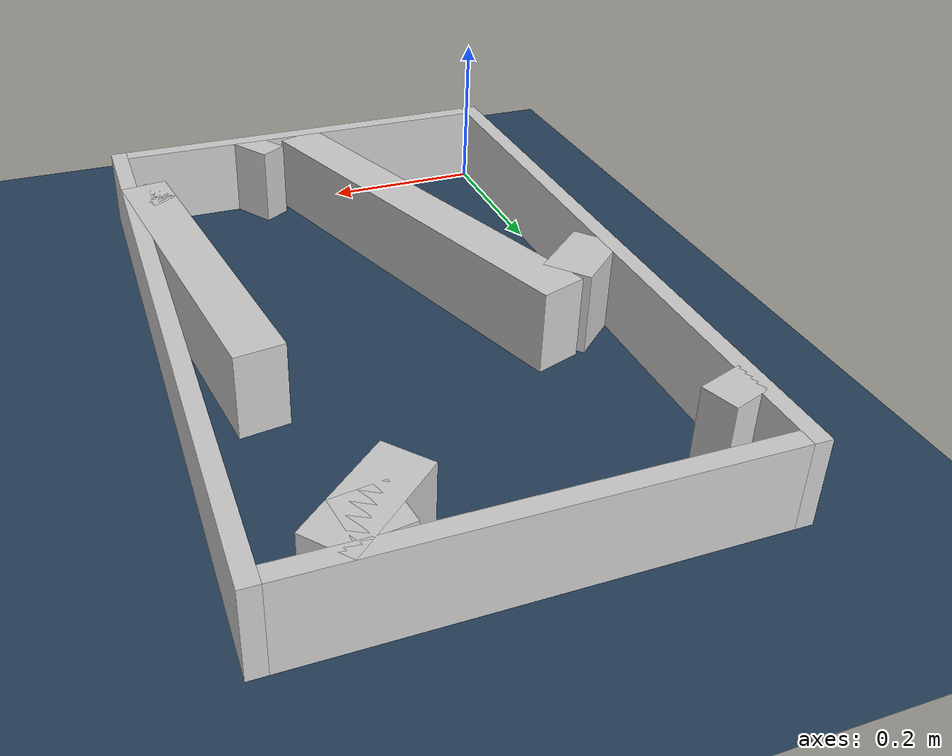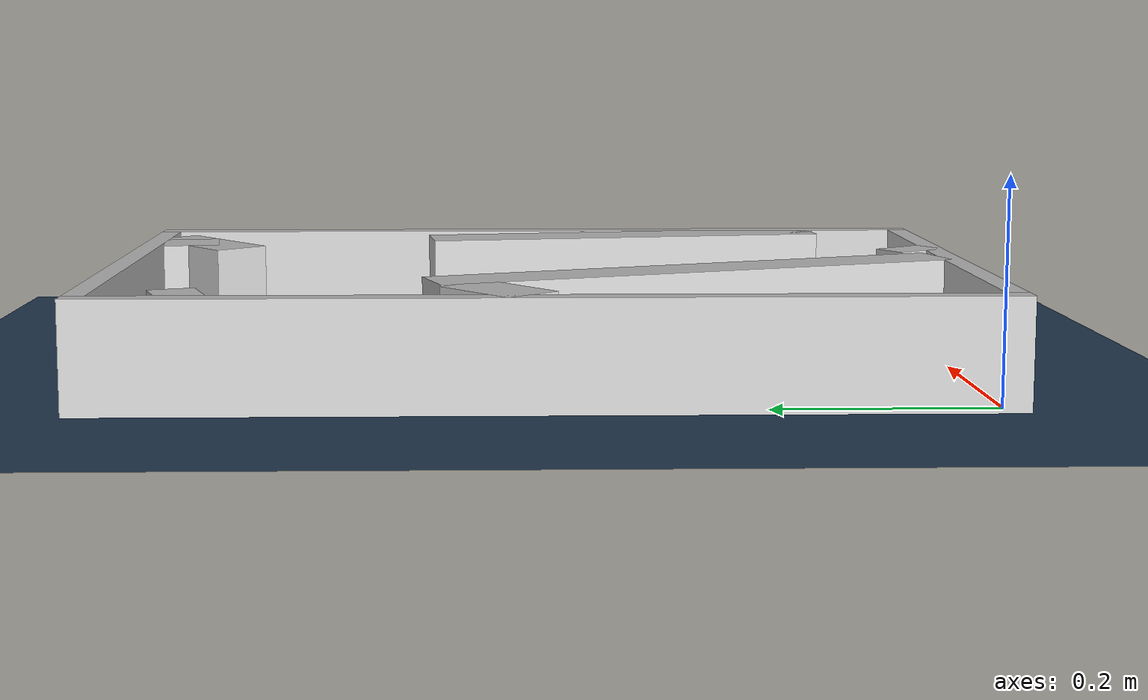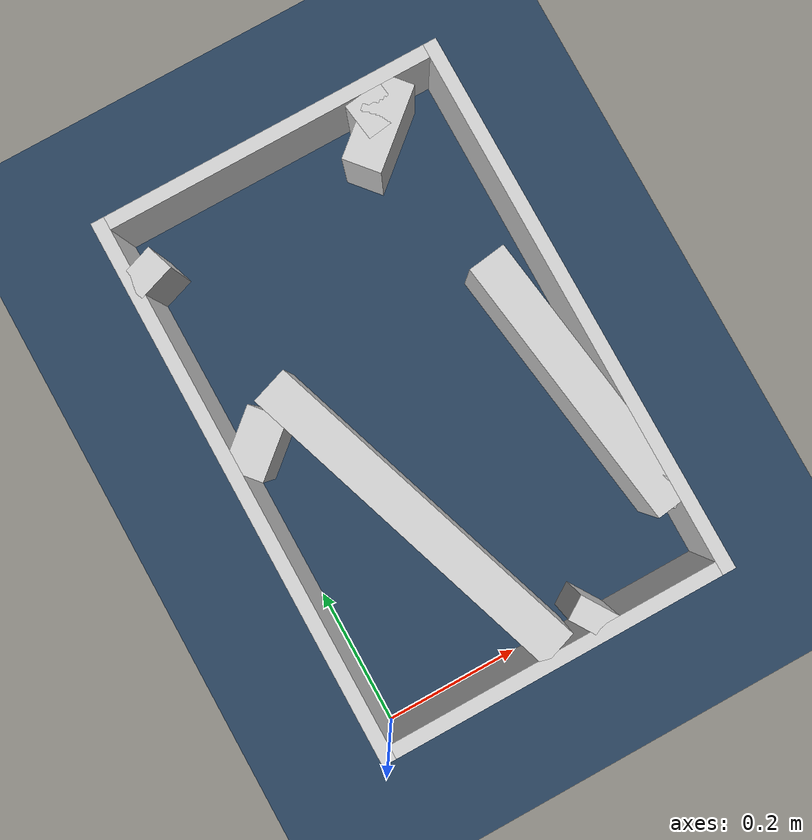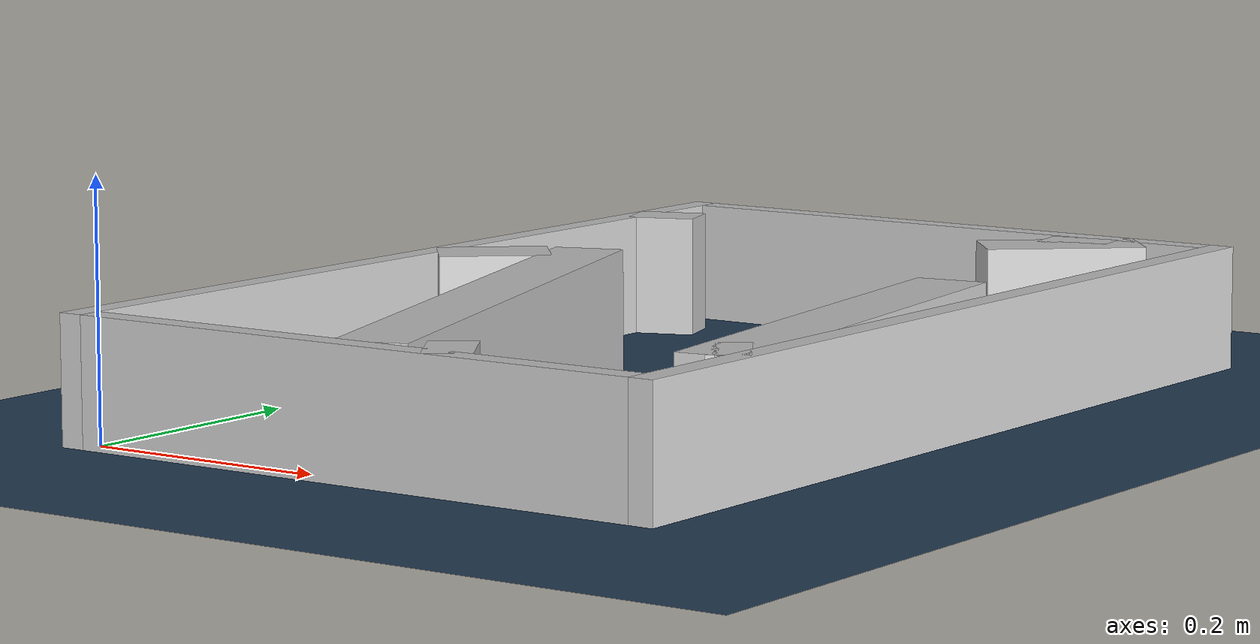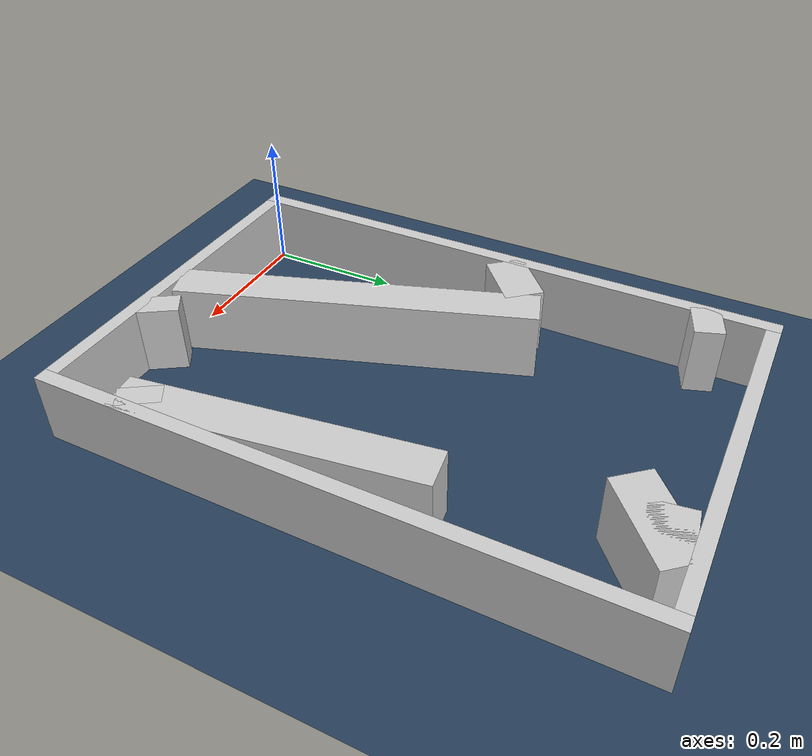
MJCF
<?xml version="1.0" ?>
<mujoco model="generated_real_template">
  <compiler angle="degree"/>
  <option timestep="0.002" integrator="implicitfast" iterations="100" cone="elliptic"/>
  <default>
    <geom density="1"/>
  </default>
  <asset>
    <texture builtin="gradient" height="3072" rgb1="0.3 0.5 0.7" rgb2="0 0 0" type="skybox" width="512"/>
    <texture builtin="checker" height="300" mark="edge" markrgb="0.8 0.8 0.8" name="groundplane" rgb1="0.2 0.3 0.4" rgb2="0.1 0.2 0.3" type="2d" width="300"/>
    <material name="groundplane" reflectance="0.2" texrepeat="5 5" texture="groundplane" texuniform="true"/>
  </asset>
  <worldbody>
    <light dir="0 0 -1" directional="true" pos="0 0 1.5"/>
    <geom name="floor" type="plane" condim="4" friction="0.5 0.005 0.001" material="groundplane" size="0 0 0.05"/>
    <body name="walls">
      <geom name="wall_boundary_left" type="box" condim="4" friction="1.0 0.005 0.0001" rgba="0.8 0.8 0.8 1" pos="-0.010000 0.387500 0.050000" euler="0 0 0.000000" size="0.010000 0.407500 0.050000"/>
      <geom name="wall_boundary_right" type="box" condim="4" friction="1.0 0.005 0.0001" rgba="0.8 0.8 0.8 1" pos="0.500000 0.387500 0.050000" euler="0 0 0.000000" size="0.010000 0.407500 0.050000"/>
      <geom name="wall_boundary_bottom" type="box" condim="4" friction="1.0 0.005 0.0001" rgba="0.8 0.8 0.8 1" pos="0.245000 -0.010000 0.050000" euler="0 0 0.000000" size="0.245000 0.010000 0.050000"/>
      <geom name="wall_boundary_top" type="box" condim="4" friction="1.0 0.005 0.0001" rgba="0.8 0.8 0.8 1" pos="0.245000 0.785000 0.050000" euler="0 0 0.000000" size="0.245000 0.010000 0.050000"/>
      <geom name="wall_inner_1_1" type="box" condim="4" friction="1.0 0.005 0.0001" rgba="0.8 0.8 0.8 1" pos="0.476584 0.118594 0.050000" euler="0 0 -147.158259" size="0.015968 0.028500 0.050000"/>
      <geom name="wall_inner_1_2" type="box" condim="4" friction="1.0 0.005 0.0001" rgba="0.8 0.8 0.8 1" pos="0.314407 0.013911 0.050000" euler="0 0 -147.158259" size="0.018375 0.028500 0.050000"/>
      <geom name="wall_inner_2_1" type="box" condim="4" friction="1.0 0.005 0.0001" rgba="0.8 0.8 0.8 1" pos="0.170171 0.244339 0.050000" euler="0 0 108.903812" size="0.258269 0.028500 0.050000"/>
      <geom name="wall_inner_2_2" type="box" condim="4" friction="1.0 0.005 0.0001" rgba="0.8 0.8 0.8 1" pos="0.013669 0.701346 0.050000" euler="0 0 108.903812" size="0.020697 0.028500 0.050000"/>
      <geom name="wall_inner_3_1" type="box" condim="4" friction="1.0 0.005 0.0001" rgba="0.8 0.8 0.8 1" pos="0.452809 0.294060 0.050000" euler="0 0 98.045575" size="0.206988 0.028500 0.050000"/>
      <geom name="wall_inner_3_2" type="box" condim="4" friction="1.0 0.005 0.0001" rgba="0.8 0.8 0.8 1" pos="0.388720 0.747463 0.050000" euler="0 0 98.045575" size="0.027811 0.028500 0.050000"/>
      <geom name="wall_inner_4_1" type="box" condim="4" friction="1.0 0.005 0.0001" rgba="0.8 0.8 0.8 1" pos="0.385941 0.731018 0.050000" euler="0 0 -139.379530" size="0.065047 0.028500 0.050000"/>
      <geom name="wall_inner_4_2" type="box" condim="4" friction="1.0 0.005 0.0001" rgba="0.8 0.8 0.8 1" pos="0.034198 0.429319 0.050000" euler="0 0 -139.379530" size="0.045054 0.028500 0.050000"/>
    </body>
  </worldbody>
</mujoco>
